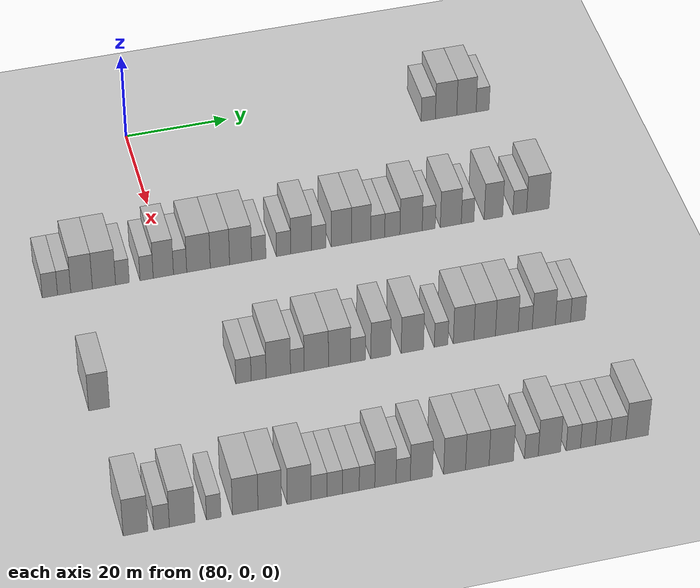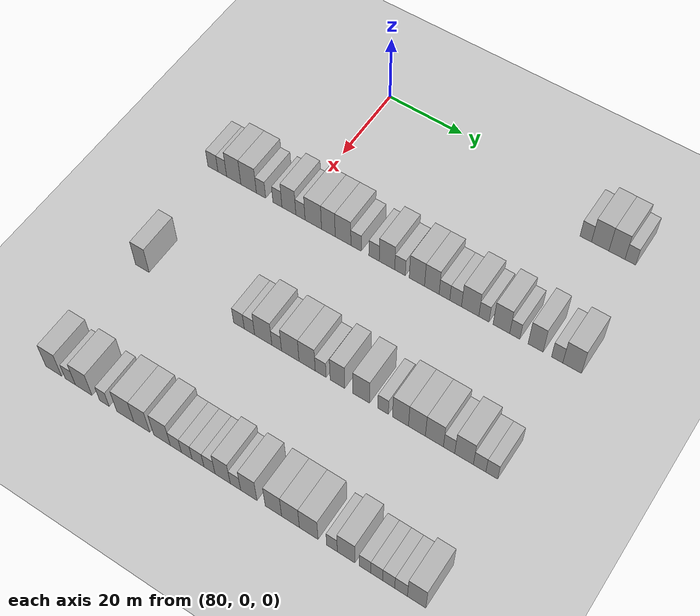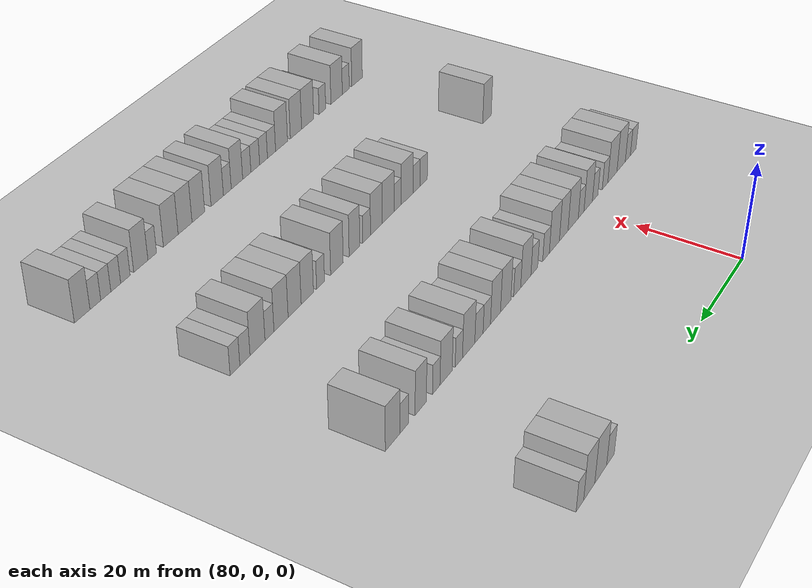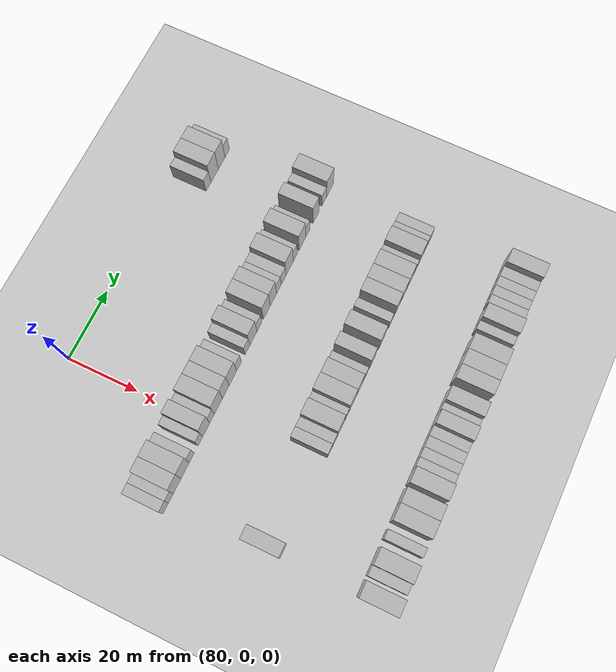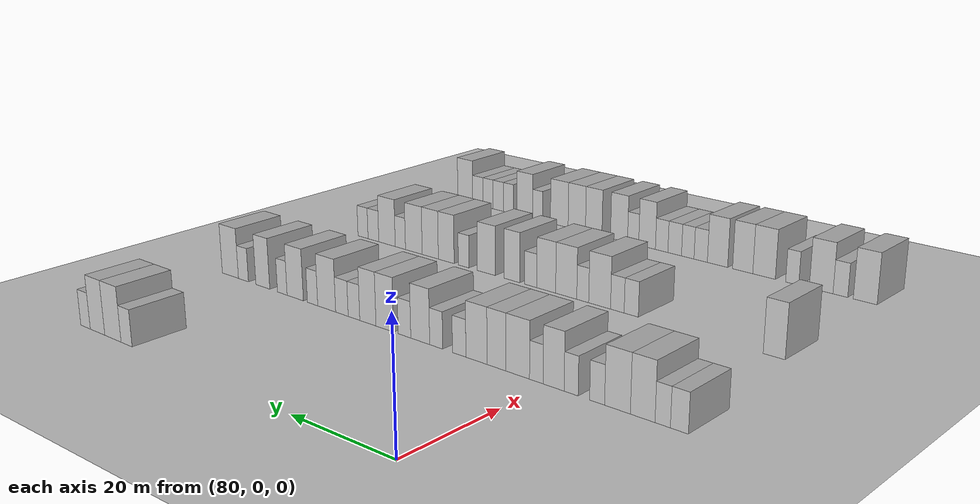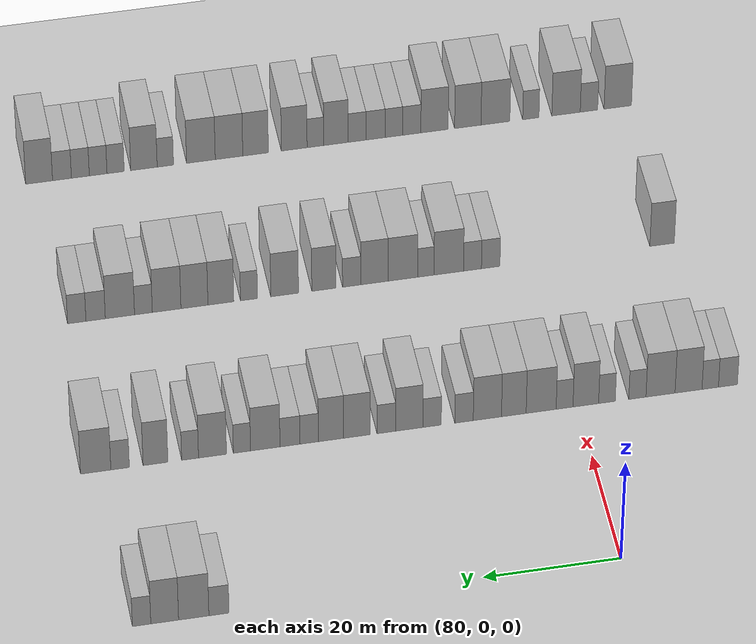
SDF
<sdf version="1.6">
 <world name="default">
  <include>
   <name>ground_plane_2</name>
   <uri>model://HANNAS_ground_plane</uri>
   <pose>100 0 0  0 0 0</pose>
  </include>
  <model name="building_579">
   <static>1</static>
   <pose>85.0000 57.8778 0 0.000000 0.000000 0.000000</pose>
   <link name="link">
    <pose>0 0 3.00 0 0 0</pose>
    <collision name="collision"><geometry><box><size>10.0000 2.8677 6.0000</size></box></geometry></collision>
    <visual name="visual">
     <cast_shadows>0</cast_shadows>
     <geometry><box><size>10.0000 2.8677 6.0000</size></box></geometry>
     <material>
      <script>
       <uri>model://HANNAS_wall/materials/scripts</uri>
       <uri>model://HANNAS_wall/materials/textures</uri>
       <name>vrc/HANNAS_wall</name>
      </script>
     </material>
    </visual>
   </link>
  </model>
  <model name="building_580">
   <static>1</static>
   <pose>85.0000 61.4691 0 0.000000 0.000000 0.000000</pose>
   <link name="link">
    <pose>0 0 4.50 0 0 0</pose>
    <collision name="collision"><geometry><box><size>10.0000 4.3151 9.0000</size></box></geometry></collision>
    <visual name="visual">
     <cast_shadows>0</cast_shadows>
     <geometry><box><size>10.0000 4.3151 9.0000</size></box></geometry>
     <material>
      <script>
       <uri>model://HANNAS_wall/materials/scripts</uri>
       <uri>model://HANNAS_wall/materials/textures</uri>
       <name>vrc/HANNAS_wall</name>
      </script>
     </material>
    </visual>
   </link>
  </model>
  <model name="building_581">
   <static>1</static>
   <pose>85.0000 65.6026 0 0.000000 0.000000 0.000000</pose>
   <link name="link">
    <pose>0 0 4.50 0 0 0</pose>
    <collision name="collision"><geometry><box><size>10.0000 3.9518 9.0000</size></box></geometry></collision>
    <visual name="visual">
     <cast_shadows>0</cast_shadows>
     <geometry><box><size>10.0000 3.9518 9.0000</size></box></geometry>
     <material>
      <script>
       <uri>model://HANNAS_wall/materials/scripts</uri>
       <uri>model://HANNAS_wall/materials/textures</uri>
       <name>vrc/HANNAS_wall</name>
      </script>
     </material>
    </visual>
   </link>
  </model>
  <model name="building_582">
   <static>1</static>
   <pose>85.0000 68.8892 0 0.000000 0.000000 0.000000</pose>
   <link name="link">
    <pose>0 0 3.00 0 0 0</pose>
    <collision name="collision"><geometry><box><size>10.0000 2.6215 6.0000</size></box></geometry></collision>
    <visual name="visual">
     <cast_shadows>0</cast_shadows>
     <geometry><box><size>10.0000 2.6215 6.0000</size></box></geometry>
     <material>
      <script>
       <uri>model://HANNAS_wall/materials/scripts</uri>
       <uri>model://HANNAS_wall/materials/textures</uri>
       <name>vrc/HANNAS_wall</name>
      </script>
     </material>
    </visual>
   </link>
  </model>
  <model name="building_795">
   <static>1</static>
   <pose>115.0000 -22.3687 0 0.000000 0.000000 0.000000</pose>
   <link name="link">
    <pose>0 0 3.00 0 0 0</pose>
    <collision name="collision"><geometry><box><size>10.0000 2.8315 6.0000</size></box></geometry></collision>
    <visual name="visual">
     <cast_shadows>0</cast_shadows>
     <geometry><box><size>10.0000 2.8315 6.0000</size></box></geometry>
     <material>
      <script>
       <uri>model://HANNAS_wall/materials/scripts</uri>
       <uri>model://HANNAS_wall/materials/textures</uri>
       <name>vrc/HANNAS_wall</name>
      </script>
     </material>
    </visual>
   </link>
  </model>
  <model name="building_796">
   <static>1</static>
   <pose>115.0000 -19.7249 0 0.000000 0.000000 0.000000</pose>
   <link name="link">
    <pose>0 0 3.00 0 0 0</pose>
    <collision name="collision"><geometry><box><size>10.0000 2.4561 6.0000</size></box></geometry></collision>
    <visual name="visual">
     <cast_shadows>0</cast_shadows>
     <geometry><box><size>10.0000 2.4561 6.0000</size></box></geometry>
     <material>
      <script>
       <uri>model://HANNAS_wall/materials/scripts</uri>
       <uri>model://HANNAS_wall/materials/textures</uri>
       <name>vrc/HANNAS_wall</name>
      </script>
     </material>
    </visual>
   </link>
  </model>
  <model name="building_797">
   <static>1</static>
   <pose>115.0000 -16.4858 0 0.000000 0.000000 0.000000</pose>
   <link name="link">
    <pose>0 0 4.50 0 0 0</pose>
    <collision name="collision"><geometry><box><size>10.0000 4.0220 9.0000</size></box></geometry></collision>
    <visual name="visual">
     <cast_shadows>0</cast_shadows>
     <geometry><box><size>10.0000 4.0220 9.0000</size></box></geometry>
     <material>
      <script>
       <uri>model://HANNAS_wall/materials/scripts</uri>
       <uri>model://HANNAS_wall/materials/textures</uri>
       <name>vrc/HANNAS_wall</name>
      </script>
     </material>
    </visual>
   </link>
  </model>
  <model name="building_798">
   <static>1</static>
   <pose>115.0000 -12.3118 0 0.000000 0.000000 0.000000</pose>
   <link name="link">
    <pose>0 0 4.50 0 0 0</pose>
    <collision name="collision"><geometry><box><size>10.0000 4.3262 9.0000</size></box></geometry></collision>
    <visual name="visual">
     <cast_shadows>0</cast_shadows>
     <geometry><box><size>10.0000 4.3262 9.0000</size></box></geometry>
     <material>
      <script>
       <uri>model://HANNAS_wall/materials/scripts</uri>
       <uri>model://HANNAS_wall/materials/textures</uri>
       <name>vrc/HANNAS_wall</name>
      </script>
     </material>
    </visual>
   </link>
  </model>
  <model name="building_799">
   <static>1</static>
   <pose>115.0000 -8.8650 0 0.000000 0.000000 0.000000</pose>
   <link name="link">
    <pose>0 0 3.00 0 0 0</pose>
    <collision name="collision"><geometry><box><size>10.0000 2.5674 6.0000</size></box></geometry></collision>
    <visual name="visual">
     <cast_shadows>0</cast_shadows>
     <geometry><box><size>10.0000 2.5674 6.0000</size></box></geometry>
     <material>
      <script>
       <uri>model://HANNAS_wall/materials/scripts</uri>
       <uri>model://HANNAS_wall/materials/textures</uri>
       <name>vrc/HANNAS_wall</name>
      </script>
     </material>
    </visual>
   </link>
  </model>
  <model name="building_800">
   <static>1</static>
   <pose>115.0000 -4.3397 0 0.000000 0.000000 0.000000</pose>
   <link name="link">
    <pose>0 0 3.00 0 0 0</pose>
    <collision name="collision"><geometry><box><size>10.0000 2.4831 6.0000</size></box></geometry></collision>
    <visual name="visual">
     <cast_shadows>0</cast_shadows>
     <geometry><box><size>10.0000 2.4831 6.0000</size></box></geometry>
     <material>
      <script>
       <uri>model://HANNAS_wall/materials/scripts</uri>
       <uri>model://HANNAS_wall/materials/textures</uri>
       <name>vrc/HANNAS_wall</name>
      </script>
     </material>
    </visual>
   </link>
  </model>
  <model name="building_801">
   <static>1</static>
   <pose>115.0000 -1.1976 0 0.000000 0.000000 0.000000</pose>
   <link name="link">
    <pose>0 0 4.50 0 0 0</pose>
    <collision name="collision"><geometry><box><size>10.0000 3.8011 9.0000</size></box></geometry></collision>
    <visual name="visual">
     <cast_shadows>0</cast_shadows>
     <geometry><box><size>10.0000 3.8011 9.0000</size></box></geometry>
     <material>
      <script>
       <uri>model://HANNAS_wall/materials/scripts</uri>
       <uri>model://HANNAS_wall/materials/textures</uri>
       <name>vrc/HANNAS_wall</name>
      </script>
     </material>
    </visual>
   </link>
  </model>
  <model name="building_802">
   <static>1</static>
   <pose>115.0000 1.9521 0 0.000000 0.000000 0.000000</pose>
   <link name="link">
    <pose>0 0 3.00 0 0 0</pose>
    <collision name="collision"><geometry><box><size>10.0000 2.4983 6.0000</size></box></geometry></collision>
    <visual name="visual">
     <cast_shadows>0</cast_shadows>
     <geometry><box><size>10.0000 2.4983 6.0000</size></box></geometry>
     <material>
      <script>
       <uri>model://HANNAS_wall/materials/scripts</uri>
       <uri>model://HANNAS_wall/materials/textures</uri>
       <name>vrc/HANNAS_wall</name>
      </script>
     </material>
    </visual>
   </link>
  </model>
  <model name="building_803">
   <static>1</static>
   <pose>115.0000 5.4259 0 0.000000 0.000000 0.000000</pose>
   <link name="link">
    <pose>0 0 4.50 0 0 0</pose>
    <collision name="collision"><geometry><box><size>10.0000 4.4494 9.0000</size></box></geometry></collision>
    <visual name="visual">
     <cast_shadows>0</cast_shadows>
     <geometry><box><size>10.0000 4.4494 9.0000</size></box></geometry>
     <material>
      <script>
       <uri>model://HANNAS_wall/materials/scripts</uri>
       <uri>model://HANNAS_wall/materials/textures</uri>
       <name>vrc/HANNAS_wall</name>
      </script>
     </material>
    </visual>
   </link>
  </model>
  <model name="building_804">
   <static>1</static>
   <pose>115.0000 9.4767 0 0.000000 0.000000 0.000000</pose>
   <link name="link">
    <pose>0 0 4.50 0 0 0</pose>
    <collision name="collision"><geometry><box><size>10.0000 3.6522 9.0000</size></box></geometry></collision>
    <visual name="visual">
     <cast_shadows>0</cast_shadows>
     <geometry><box><size>10.0000 3.6522 9.0000</size></box></geometry>
     <material>
      <script>
       <uri>model://HANNAS_wall/materials/scripts</uri>
       <uri>model://HANNAS_wall/materials/textures</uri>
       <name>vrc/HANNAS_wall</name>
      </script>
     </material>
    </visual>
   </link>
  </model>
  <model name="building_805">
   <static>1</static>
   <pose>115.0000 13.3908 0 0.000000 0.000000 0.000000</pose>
   <link name="link">
    <pose>0 0 4.50 0 0 0</pose>
    <collision name="collision"><geometry><box><size>10.0000 4.1760 9.0000</size></box></geometry></collision>
    <visual name="visual">
     <cast_shadows>0</cast_shadows>
     <geometry><box><size>10.0000 4.1760 9.0000</size></box></geometry>
     <material>
      <script>
       <uri>model://HANNAS_wall/materials/scripts</uri>
       <uri>model://HANNAS_wall/materials/textures</uri>
       <name>vrc/HANNAS_wall</name>
      </script>
     </material>
    </visual>
   </link>
  </model>
  <model name="building_806">
   <static>1</static>
   <pose>115.0000 16.8415 0 0.000000 0.000000 0.000000</pose>
   <link name="link">
    <pose>0 0 3.00 0 0 0</pose>
    <collision name="collision"><geometry><box><size>10.0000 2.7253 6.0000</size></box></geometry></collision>
    <visual name="visual">
     <cast_shadows>0</cast_shadows>
     <geometry><box><size>10.0000 2.7253 6.0000</size></box></geometry>
     <material>
      <script>
       <uri>model://HANNAS_wall/materials/scripts</uri>
       <uri>model://HANNAS_wall/materials/textures</uri>
       <name>vrc/HANNAS_wall</name>
      </script>
     </material>
    </visual>
   </link>
  </model>
  <model name="building_807">
   <static>1</static>
   <pose>115.0000 21.5611 0 0.000000 0.000000 0.000000</pose>
   <link name="link">
    <pose>0 0 3.00 0 0 0</pose>
    <collision name="collision"><geometry><box><size>10.0000 2.7140 6.0000</size></box></geometry></collision>
    <visual name="visual">
     <cast_shadows>0</cast_shadows>
     <geometry><box><size>10.0000 2.7140 6.0000</size></box></geometry>
     <material>
      <script>
       <uri>model://HANNAS_wall/materials/scripts</uri>
       <uri>model://HANNAS_wall/materials/textures</uri>
       <name>vrc/HANNAS_wall</name>
      </script>
     </material>
    </visual>
   </link>
  </model>
  <model name="building_808">
   <static>1</static>
   <pose>115.0000 24.9270 0 0.000000 0.000000 0.000000</pose>
   <link name="link">
    <pose>0 0 4.50 0 0 0</pose>
    <collision name="collision"><geometry><box><size>10.0000 4.0179 9.0000</size></box></geometry></collision>
    <visual name="visual">
     <cast_shadows>0</cast_shadows>
     <geometry><box><size>10.0000 4.0179 9.0000</size></box></geometry>
     <material>
      <script>
       <uri>model://HANNAS_wall/materials/scripts</uri>
       <uri>model://HANNAS_wall/materials/textures</uri>
       <name>vrc/HANNAS_wall</name>
      </script>
     </material>
    </visual>
   </link>
  </model>
  <model name="building_809">
   <static>1</static>
   <pose>115.0000 28.3049 0 0.000000 0.000000 0.000000</pose>
   <link name="link">
    <pose>0 0 3.00 0 0 0</pose>
    <collision name="collision"><geometry><box><size>10.0000 2.7380 6.0000</size></box></geometry></collision>
    <visual name="visual">
     <cast_shadows>0</cast_shadows>
     <geometry><box><size>10.0000 2.7380 6.0000</size></box></geometry>
     <material>
      <script>
       <uri>model://HANNAS_wall/materials/scripts</uri>
       <uri>model://HANNAS_wall/materials/textures</uri>
       <name>vrc/HANNAS_wall</name>
      </script>
     </material>
    </visual>
   </link>
  </model>
  <model name="building_810">
   <static>1</static>
   <pose>115.0000 32.6317 0 0.000000 0.000000 0.000000</pose>
   <link name="link">
    <pose>0 0 4.50 0 0 0</pose>
    <collision name="collision"><geometry><box><size>10.0000 3.9155 9.0000</size></box></geometry></collision>
    <visual name="visual">
     <cast_shadows>0</cast_shadows>
     <geometry><box><size>10.0000 3.9155 9.0000</size></box></geometry>
     <material>
      <script>
       <uri>model://HANNAS_wall/materials/scripts</uri>
       <uri>model://HANNAS_wall/materials/textures</uri>
       <name>vrc/HANNAS_wall</name>
      </script>
     </material>
    </visual>
   </link>
  </model>
  <model name="building_811">
   <static>1</static>
   <pose>115.0000 36.4364 0 0.000000 0.000000 0.000000</pose>
   <link name="link">
    <pose>0 0 4.50 0 0 0</pose>
    <collision name="collision"><geometry><box><size>10.0000 3.6940 9.0000</size></box></geometry></collision>
    <visual name="visual">
     <cast_shadows>0</cast_shadows>
     <geometry><box><size>10.0000 3.6940 9.0000</size></box></geometry>
     <material>
      <script>
       <uri>model://HANNAS_wall/materials/scripts</uri>
       <uri>model://HANNAS_wall/materials/textures</uri>
       <name>vrc/HANNAS_wall</name>
      </script>
     </material>
    </visual>
   </link>
  </model>
  <model name="building_812">
   <static>1</static>
   <pose>115.0000 39.6289 0 0.000000 0.000000 0.000000</pose>
   <link name="link">
    <pose>0 0 3.00 0 0 0</pose>
    <collision name="collision"><geometry><box><size>10.0000 2.6909 6.0000</size></box></geometry></collision>
    <visual name="visual">
     <cast_shadows>0</cast_shadows>
     <geometry><box><size>10.0000 2.6909 6.0000</size></box></geometry>
     <material>
      <script>
       <uri>model://HANNAS_wall/materials/scripts</uri>
       <uri>model://HANNAS_wall/materials/textures</uri>
       <name>vrc/HANNAS_wall</name>
      </script>
     </material>
    </visual>
   </link>
  </model>
  <model name="building_813">
   <static>1</static>
   <pose>115.0000 42.4456 0 0.000000 0.000000 0.000000</pose>
   <link name="link">
    <pose>0 0 3.00 0 0 0</pose>
    <collision name="collision"><geometry><box><size>10.0000 2.9425 6.0000</size></box></geometry></collision>
    <visual name="visual">
     <cast_shadows>0</cast_shadows>
     <geometry><box><size>10.0000 2.9425 6.0000</size></box></geometry>
     <material>
      <script>
       <uri>model://HANNAS_wall/materials/scripts</uri>
       <uri>model://HANNAS_wall/materials/textures</uri>
       <name>vrc/HANNAS_wall</name>
      </script>
     </material>
    </visual>
   </link>
  </model>
  <model name="building_814">
   <static>1</static>
   <pose>115.0000 46.0729 0 0.000000 0.000000 0.000000</pose>
   <link name="link">
    <pose>0 0 4.50 0 0 0</pose>
    <collision name="collision"><geometry><box><size>10.0000 4.3121 9.0000</size></box></geometry></collision>
    <visual name="visual">
     <cast_shadows>0</cast_shadows>
     <geometry><box><size>10.0000 4.3121 9.0000</size></box></geometry>
     <material>
      <script>
       <uri>model://HANNAS_wall/materials/scripts</uri>
       <uri>model://HANNAS_wall/materials/textures</uri>
       <name>vrc/HANNAS_wall</name>
      </script>
     </material>
    </visual>
   </link>
  </model>
  <model name="building_815">
   <static>1</static>
   <pose>115.0000 49.4881 0 0.000000 0.000000 0.000000</pose>
   <link name="link">
    <pose>0 0 3.00 0 0 0</pose>
    <collision name="collision"><geometry><box><size>10.0000 2.5183 6.0000</size></box></geometry></collision>
    <visual name="visual">
     <cast_shadows>0</cast_shadows>
     <geometry><box><size>10.0000 2.5183 6.0000</size></box></geometry>
     <material>
      <script>
       <uri>model://HANNAS_wall/materials/scripts</uri>
       <uri>model://HANNAS_wall/materials/textures</uri>
       <name>vrc/HANNAS_wall</name>
      </script>
     </material>
    </visual>
   </link>
  </model>
  <model name="building_816">
   <static>1</static>
   <pose>115.0000 53.7925 0 0.000000 0.000000 0.000000</pose>
   <link name="link">
    <pose>0 0 4.50 0 0 0</pose>
    <collision name="collision"><geometry><box><size>10.0000 4.0904 9.0000</size></box></geometry></collision>
    <visual name="visual">
     <cast_shadows>0</cast_shadows>
     <geometry><box><size>10.0000 4.0904 9.0000</size></box></geometry>
     <material>
      <script>
       <uri>model://HANNAS_wall/materials/scripts</uri>
       <uri>model://HANNAS_wall/materials/textures</uri>
       <name>vrc/HANNAS_wall</name>
      </script>
     </material>
    </visual>
   </link>
  </model>
  <model name="building_817">
   <static>1</static>
   <pose>115.0000 57.0676 0 0.000000 0.000000 0.000000</pose>
   <link name="link">
    <pose>0 0 3.00 0 0 0</pose>
    <collision name="collision"><geometry><box><size>10.0000 2.4599 6.0000</size></box></geometry></collision>
    <visual name="visual">
     <cast_shadows>0</cast_shadows>
     <geometry><box><size>10.0000 2.4599 6.0000</size></box></geometry>
     <material>
      <script>
       <uri>model://HANNAS_wall/materials/scripts</uri>
       <uri>model://HANNAS_wall/materials/textures</uri>
       <name>vrc/HANNAS_wall</name>
      </script>
     </material>
    </visual>
   </link>
  </model>
  <model name="building_818">
   <static>1</static>
   <pose>115.0000 62.1087 0 0.000000 0.000000 0.000000</pose>
   <link name="link">
    <pose>0 0 4.50 0 0 0</pose>
    <collision name="collision"><geometry><box><size>10.0000 3.6224 9.0000</size></box></geometry></collision>
    <visual name="visual">
     <cast_shadows>0</cast_shadows>
     <geometry><box><size>10.0000 3.6224 9.0000</size></box></geometry>
     <material>
      <script>
       <uri>model://HANNAS_wall/materials/scripts</uri>
       <uri>model://HANNAS_wall/materials/textures</uri>
       <name>vrc/HANNAS_wall</name>
      </script>
     </material>
    </visual>
   </link>
  </model>
  <model name="building_819">
   <static>1</static>
   <pose>115.0000 67.2672 0 0.000000 0.000000 0.000000</pose>
   <link name="link">
    <pose>0 0 3.00 0 0 0</pose>
    <collision name="collision"><geometry><box><size>10.0000 2.6947 6.0000</size></box></geometry></collision>
    <visual name="visual">
     <cast_shadows>0</cast_shadows>
     <geometry><box><size>10.0000 2.6947 6.0000</size></box></geometry>
     <material>
      <script>
       <uri>model://HANNAS_wall/materials/scripts</uri>
       <uri>model://HANNAS_wall/materials/textures</uri>
       <name>vrc/HANNAS_wall</name>
      </script>
     </material>
    </visual>
   </link>
  </model>
  <model name="building_820">
   <static>1</static>
   <pose>115.0000 70.8242 0 0.000000 0.000000 0.000000</pose>
   <link name="link">
    <pose>0 0 4.50 0 0 0</pose>
    <collision name="collision"><geometry><box><size>10.0000 4.4193 9.0000</size></box></geometry></collision>
    <visual name="visual">
     <cast_shadows>0</cast_shadows>
     <geometry><box><size>10.0000 4.4193 9.0000</size></box></geometry>
     <material>
      <script>
       <uri>model://HANNAS_wall/materials/scripts</uri>
       <uri>model://HANNAS_wall/materials/textures</uri>
       <name>vrc/HANNAS_wall</name>
      </script>
     </material>
    </visual>
   </link>
  </model>
  <model name="building_1027">
   <static>1</static>
   <pose>145.0000 -19.1681 0 0.000000 0.000000 0.000000</pose>
   <link name="link">
    <pose>0 0 4.50 0 0 0</pose>
    <collision name="collision"><geometry><box><size>10.0000 3.7262 9.0000</size></box></geometry></collision>
    <visual name="visual">
     <cast_shadows>0</cast_shadows>
     <geometry><box><size>10.0000 3.7262 9.0000</size></box></geometry>
     <material>
      <script>
       <uri>model://HANNAS_wall/materials/scripts</uri>
       <uri>model://HANNAS_wall/materials/textures</uri>
       <name>vrc/HANNAS_wall</name>
      </script>
     </material>
    </visual>
   </link>
  </model>
  <model name="building_1028">
   <static>1</static>
   <pose>145.0000 6.8922 0 0.000000 0.000000 0.000000</pose>
   <link name="link">
    <pose>0 0 3.00 0 0 0</pose>
    <collision name="collision"><geometry><box><size>10.0000 2.7982 6.0000</size></box></geometry></collision>
    <visual name="visual">
     <cast_shadows>0</cast_shadows>
     <geometry><box><size>10.0000 2.7982 6.0000</size></box></geometry>
     <material>
      <script>
       <uri>model://HANNAS_wall/materials/scripts</uri>
       <uri>model://HANNAS_wall/materials/textures</uri>
       <name>vrc/HANNAS_wall</name>
      </script>
     </material>
    </visual>
   </link>
  </model>
  <model name="building_1029">
   <static>1</static>
   <pose>145.0000 9.6502 0 0.000000 0.000000 0.000000</pose>
   <link name="link">
    <pose>0 0 3.00 0 0 0</pose>
    <collision name="collision"><geometry><box><size>10.0000 2.7179 6.0000</size></box></geometry></collision>
    <visual name="visual">
     <cast_shadows>0</cast_shadows>
     <geometry><box><size>10.0000 2.7179 6.0000</size></box></geometry>
     <material>
      <script>
       <uri>model://HANNAS_wall/materials/scripts</uri>
       <uri>model://HANNAS_wall/materials/textures</uri>
       <name>vrc/HANNAS_wall</name>
      </script>
     </material>
    </visual>
   </link>
  </model>
  <model name="building_1030">
   <static>1</static>
   <pose>145.0000 13.2420 0 0.000000 0.000000 0.000000</pose>
   <link name="link">
    <pose>0 0 4.50 0 0 0</pose>
    <collision name="collision"><geometry><box><size>10.0000 4.4655 9.0000</size></box></geometry></collision>
    <visual name="visual">
     <cast_shadows>0</cast_shadows>
     <geometry><box><size>10.0000 4.4655 9.0000</size></box></geometry>
     <material>
      <script>
       <uri>model://HANNAS_wall/materials/scripts</uri>
       <uri>model://HANNAS_wall/materials/textures</uri>
       <name>vrc/HANNAS_wall</name>
      </script>
     </material>
    </visual>
   </link>
  </model>
  <model name="building_1031">
   <static>1</static>
   <pose>145.0000 16.7136 0 0.000000 0.000000 0.000000</pose>
   <link name="link">
    <pose>0 0 3.00 0 0 0</pose>
    <collision name="collision"><geometry><box><size>10.0000 2.4777 6.0000</size></box></geometry></collision>
    <visual name="visual">
     <cast_shadows>0</cast_shadows>
     <geometry><box><size>10.0000 2.4777 6.0000</size></box></geometry>
     <material>
      <script>
       <uri>model://HANNAS_wall/materials/scripts</uri>
       <uri>model://HANNAS_wall/materials/textures</uri>
       <name>vrc/HANNAS_wall</name>
      </script>
     </material>
    </visual>
   </link>
  </model>
  <model name="building_1032">
   <static>1</static>
   <pose>145.0000 20.1913 0 0.000000 0.000000 0.000000</pose>
   <link name="link">
    <pose>0 0 4.50 0 0 0</pose>
    <collision name="collision"><geometry><box><size>10.0000 4.4779 9.0000</size></box></geometry></collision>
    <visual name="visual">
     <cast_shadows>0</cast_shadows>
     <geometry><box><size>10.0000 4.4779 9.0000</size></box></geometry>
     <material>
      <script>
       <uri>model://HANNAS_wall/materials/scripts</uri>
       <uri>model://HANNAS_wall/materials/textures</uri>
       <name>vrc/HANNAS_wall</name>
      </script>
     </material>
    </visual>
   </link>
  </model>
  <model name="building_1033">
   <static>1</static>
   <pose>145.0000 24.4792 0 0.000000 0.000000 0.000000</pose>
   <link name="link">
    <pose>0 0 4.50 0 0 0</pose>
    <collision name="collision"><geometry><box><size>10.0000 4.0978 9.0000</size></box></geometry></collision>
    <visual name="visual">
     <cast_shadows>0</cast_shadows>
     <geometry><box><size>10.0000 4.0978 9.0000</size></box></geometry>
     <material>
      <script>
       <uri>model://HANNAS_wall/materials/scripts</uri>
       <uri>model://HANNAS_wall/materials/textures</uri>
       <name>vrc/HANNAS_wall</name>
      </script>
     </material>
    </visual>
   </link>
  </model>
  <model name="building_1034">
   <static>1</static>
   <pose>145.0000 27.8962 0 0.000000 0.000000 0.000000</pose>
   <link name="link">
    <pose>0 0 3.00 0 0 0</pose>
    <collision name="collision"><geometry><box><size>10.0000 2.7362 6.0000</size></box></geometry></collision>
    <visual name="visual">
     <cast_shadows>0</cast_shadows>
     <geometry><box><size>10.0000 2.7362 6.0000</size></box></geometry>
     <material>
      <script>
       <uri>model://HANNAS_wall/materials/scripts</uri>
       <uri>model://HANNAS_wall/materials/textures</uri>
       <name>vrc/HANNAS_wall</name>
      </script>
     </material>
    </visual>
   </link>
  </model>
  <model name="building_1035">
   <static>1</static>
   <pose>145.0000 32.0779 0 0.000000 0.000000 0.000000</pose>
   <link name="link">
    <pose>0 0 4.50 0 0 0</pose>
    <collision name="collision"><geometry><box><size>10.0000 3.6272 9.0000</size></box></geometry></collision>
    <visual name="visual">
     <cast_shadows>0</cast_shadows>
     <geometry><box><size>10.0000 3.6272 9.0000</size></box></geometry>
     <material>
      <script>
       <uri>model://HANNAS_wall/materials/scripts</uri>
       <uri>model://HANNAS_wall/materials/textures</uri>
       <name>vrc/HANNAS_wall</name>
      </script>
     </material>
    </visual>
   </link>
  </model>
  <model name="building_1036">
   <static>1</static>
   <pose>145.0000 37.9705 0 0.000000 0.000000 0.000000</pose>
   <link name="link">
    <pose>0 0 4.50 0 0 0</pose>
    <collision name="collision"><geometry><box><size>10.0000 4.1581 9.0000</size></box></geometry></collision>
    <visual name="visual">
     <cast_shadows>0</cast_shadows>
     <geometry><box><size>10.0000 4.1581 9.0000</size></box></geometry>
     <material>
      <script>
       <uri>model://HANNAS_wall/materials/scripts</uri>
       <uri>model://HANNAS_wall/materials/textures</uri>
       <name>vrc/HANNAS_wall</name>
      </script>
     </material>
    </visual>
   </link>
  </model>
  <model name="building_1037">
   <static>1</static>
   <pose>145.0000 43.3267 0 0.000000 0.000000 0.000000</pose>
   <link name="link">
    <pose>0 0 3.00 0 0 0</pose>
    <collision name="collision"><geometry><box><size>10.0000 2.5543 6.0000</size></box></geometry></collision>
    <visual name="visual">
     <cast_shadows>0</cast_shadows>
     <geometry><box><size>10.0000 2.5543 6.0000</size></box></geometry>
     <material>
      <script>
       <uri>model://HANNAS_wall/materials/scripts</uri>
       <uri>model://HANNAS_wall/materials/textures</uri>
       <name>vrc/HANNAS_wall</name>
      </script>
     </material>
    </visual>
   </link>
  </model>
  <model name="building_1038">
   <static>1</static>
   <pose>145.0000 47.5375 0 0.000000 0.000000 0.000000</pose>
   <link name="link">
    <pose>0 0 4.50 0 0 0</pose>
    <collision name="collision"><geometry><box><size>10.0000 3.8674 9.0000</size></box></geometry></collision>
    <visual name="visual">
     <cast_shadows>0</cast_shadows>
     <geometry><box><size>10.0000 3.8674 9.0000</size></box></geometry>
     <material>
      <script>
       <uri>model://HANNAS_wall/materials/scripts</uri>
       <uri>model://HANNAS_wall/materials/textures</uri>
       <name>vrc/HANNAS_wall</name>
      </script>
     </material>
    </visual>
   </link>
  </model>
  <model name="building_1039">
   <static>1</static>
   <pose>145.0000 51.4903 0 0.000000 0.000000 0.000000</pose>
   <link name="link">
    <pose>0 0 4.50 0 0 0</pose>
    <collision name="collision"><geometry><box><size>10.0000 4.0381 9.0000</size></box></geometry></collision>
    <visual name="visual">
     <cast_shadows>0</cast_shadows>
     <geometry><box><size>10.0000 4.0381 9.0000</size></box></geometry>
     <material>
      <script>
       <uri>model://HANNAS_wall/materials/scripts</uri>
       <uri>model://HANNAS_wall/materials/textures</uri>
       <name>vrc/HANNAS_wall</name>
      </script>
     </material>
    </visual>
   </link>
  </model>
  <model name="building_1040">
   <static>1</static>
   <pose>145.0000 55.6463 0 0.000000 0.000000 0.000000</pose>
   <link name="link">
    <pose>0 0 4.50 0 0 0</pose>
    <collision name="collision"><geometry><box><size>10.0000 4.2740 9.0000</size></box></geometry></collision>
    <visual name="visual">
     <cast_shadows>0</cast_shadows>
     <geometry><box><size>10.0000 4.2740 9.0000</size></box></geometry>
     <material>
      <script>
       <uri>model://HANNAS_wall/materials/scripts</uri>
       <uri>model://HANNAS_wall/materials/textures</uri>
       <name>vrc/HANNAS_wall</name>
      </script>
     </material>
    </visual>
   </link>
  </model>
  <model name="building_1041">
   <static>1</static>
   <pose>145.0000 59.1117 0 0.000000 0.000000 0.000000</pose>
   <link name="link">
    <pose>0 0 3.00 0 0 0</pose>
    <collision name="collision"><geometry><box><size>10.0000 2.6566 6.0000</size></box></geometry></collision>
    <visual name="visual">
     <cast_shadows>0</cast_shadows>
     <geometry><box><size>10.0000 2.6566 6.0000</size></box></geometry>
     <material>
      <script>
       <uri>model://HANNAS_wall/materials/scripts</uri>
       <uri>model://HANNAS_wall/materials/textures</uri>
       <name>vrc/HANNAS_wall</name>
      </script>
     </material>
    </visual>
   </link>
  </model>
  <model name="building_1042">
   <static>1</static>
   <pose>145.0000 62.6178 0 0.000000 0.000000 0.000000</pose>
   <link name="link">
    <pose>0 0 4.50 0 0 0</pose>
    <collision name="collision"><geometry><box><size>10.0000 4.3557 9.0000</size></box></geometry></collision>
    <visual name="visual">
     <cast_shadows>0</cast_shadows>
     <geometry><box><size>10.0000 4.3557 9.0000</size></box></geometry>
     <material>
      <script>
       <uri>model://HANNAS_wall/materials/scripts</uri>
       <uri>model://HANNAS_wall/materials/textures</uri>
       <name>vrc/HANNAS_wall</name>
      </script>
     </material>
    </visual>
   </link>
  </model>
  <model name="building_1043">
   <static>1</static>
   <pose>145.0000 66.2402 0 0.000000 0.000000 0.000000</pose>
   <link name="link">
    <pose>0 0 3.00 0 0 0</pose>
    <collision name="collision"><geometry><box><size>10.0000 2.8890 6.0000</size></box></geometry></collision>
    <visual name="visual">
     <cast_shadows>0</cast_shadows>
     <geometry><box><size>10.0000 2.8890 6.0000</size></box></geometry>
     <material>
      <script>
       <uri>model://HANNAS_wall/materials/scripts</uri>
       <uri>model://HANNAS_wall/materials/textures</uri>
       <name>vrc/HANNAS_wall</name>
      </script>
     </material>
    </visual>
   </link>
  </model>
  <model name="building_1044">
   <static>1</static>
   <pose>145.0000 69.0547 0 0.000000 0.000000 0.000000</pose>
   <link name="link">
    <pose>0 0 3.00 0 0 0</pose>
    <collision name="collision"><geometry><box><size>10.0000 2.7399 6.0000</size></box></geometry></collision>
    <visual name="visual">
     <cast_shadows>0</cast_shadows>
     <geometry><box><size>10.0000 2.7399 6.0000</size></box></geometry>
     <material>
      <script>
       <uri>model://HANNAS_wall/materials/scripts</uri>
       <uri>model://HANNAS_wall/materials/textures</uri>
       <name>vrc/HANNAS_wall</name>
      </script>
     </material>
    </visual>
   </link>
  </model>
  <model name="building_1245">
   <static>1</static>
   <pose>175.0000 -18.8756 0 0.000000 0.000000 0.000000</pose>
   <link name="link">
    <pose>0 0 4.50 0 0 0</pose>
    <collision name="collision"><geometry><box><size>10.0000 4.2673 9.0000</size></box></geometry></collision>
    <visual name="visual">
     <cast_shadows>0</cast_shadows>
     <geometry><box><size>10.0000 4.2673 9.0000</size></box></geometry>
     <material>
      <script>
       <uri>model://HANNAS_wall/materials/scripts</uri>
       <uri>model://HANNAS_wall/materials/textures</uri>
       <name>vrc/HANNAS_wall</name>
      </script>
     </material>
    </visual>
   </link>
  </model>
  <model name="building_1246">
   <static>1</static>
   <pose>175.0000 -14.3864 0 0.000000 0.000000 0.000000</pose>
   <link name="link">
    <pose>0 0 3.00 0 0 0</pose>
    <collision name="collision"><geometry><box><size>10.0000 2.7112 6.0000</size></box></geometry></collision>
    <visual name="visual">
     <cast_shadows>0</cast_shadows>
     <geometry><box><size>10.0000 2.7112 6.0000</size></box></geometry>
     <material>
      <script>
       <uri>model://HANNAS_wall/materials/scripts</uri>
       <uri>model://HANNAS_wall/materials/textures</uri>
       <name>vrc/HANNAS_wall</name>
      </script>
     </material>
    </visual>
   </link>
  </model>
  <model name="building_1247">
   <static>1</static>
   <pose>175.0000 -10.8173 0 0.000000 0.000000 0.000000</pose>
   <link name="link">
    <pose>0 0 4.50 0 0 0</pose>
    <collision name="collision"><geometry><box><size>10.0000 4.4269 9.0000</size></box></geometry></collision>
    <visual name="visual">
     <cast_shadows>0</cast_shadows>
     <geometry><box><size>10.0000 4.4269 9.0000</size></box></geometry>
     <material>
      <script>
       <uri>model://HANNAS_wall/materials/scripts</uri>
       <uri>model://HANNAS_wall/materials/textures</uri>
       <name>vrc/HANNAS_wall</name>
      </script>
     </material>
    </visual>
   </link>
  </model>
  <model name="building_1248">
   <static>1</static>
   <pose>175.0000 -5.3417 0 0.000000 0.000000 0.000000</pose>
   <link name="link">
    <pose>0 0 3.00 0 0 0</pose>
    <collision name="collision"><geometry><box><size>10.0000 2.5243 6.0000</size></box></geometry></collision>
    <visual name="visual">
     <cast_shadows>0</cast_shadows>
     <geometry><box><size>10.0000 2.5243 6.0000</size></box></geometry>
     <material>
      <script>
       <uri>model://HANNAS_wall/materials/scripts</uri>
       <uri>model://HANNAS_wall/materials/textures</uri>
       <name>vrc/HANNAS_wall</name>
      </script>
     </material>
    </visual>
   </link>
  </model>
  <model name="building_1249">
   <static>1</static>
   <pose>175.0000 0.1569 0 0.000000 0.000000 0.000000</pose>
   <link name="link">
    <pose>0 0 4.50 0 0 0</pose>
    <collision name="collision"><geometry><box><size>10.0000 4.4729 9.0000</size></box></geometry></collision>
    <visual name="visual">
     <cast_shadows>0</cast_shadows>
     <geometry><box><size>10.0000 4.4729 9.0000</size></box></geometry>
     <material>
      <script>
       <uri>model://HANNAS_wall/materials/scripts</uri>
       <uri>model://HANNAS_wall/materials/textures</uri>
       <name>vrc/HANNAS_wall</name>
      </script>
     </material>
    </visual>
   </link>
  </model>
  <model name="building_1250">
   <static>1</static>
   <pose>175.0000 4.4393 0 0.000000 0.000000 0.000000</pose>
   <link name="link">
    <pose>0 0 4.50 0 0 0</pose>
    <collision name="collision"><geometry><box><size>10.0000 4.0919 9.0000</size></box></geometry></collision>
    <visual name="visual">
     <cast_shadows>0</cast_shadows>
     <geometry><box><size>10.0000 4.0919 9.0000</size></box></geometry>
     <material>
      <script>
       <uri>model://HANNAS_wall/materials/scripts</uri>
       <uri>model://HANNAS_wall/materials/textures</uri>
       <name>vrc/HANNAS_wall</name>
      </script>
     </material>
    </visual>
   </link>
  </model>
  <model name="building_1251">
   <static>1</static>
   <pose>175.0000 9.5965 0 0.000000 0.000000 0.000000</pose>
   <link name="link">
    <pose>0 0 4.50 0 0 0</pose>
    <collision name="collision"><geometry><box><size>10.0000 4.2225 9.0000</size></box></geometry></collision>
    <visual name="visual">
     <cast_shadows>0</cast_shadows>
     <geometry><box><size>10.0000 4.2225 9.0000</size></box></geometry>
     <material>
      <script>
       <uri>model://HANNAS_wall/materials/scripts</uri>
       <uri>model://HANNAS_wall/materials/textures</uri>
       <name>vrc/HANNAS_wall</name>
      </script>
     </material>
    </visual>
   </link>
  </model>
  <model name="building_1252">
   <static>1</static>
   <pose>175.0000 13.1233 0 0.000000 0.000000 0.000000</pose>
   <link name="link">
    <pose>0 0 3.00 0 0 0</pose>
    <collision name="collision"><geometry><box><size>10.0000 2.8312 6.0000</size></box></geometry></collision>
    <visual name="visual">
     <cast_shadows>0</cast_shadows>
     <geometry><box><size>10.0000 2.8312 6.0000</size></box></geometry>
     <material>
      <script>
       <uri>model://HANNAS_wall/materials/scripts</uri>
       <uri>model://HANNAS_wall/materials/textures</uri>
       <name>vrc/HANNAS_wall</name>
      </script>
     </material>
    </visual>
   </link>
  </model>
  <model name="building_1253">
   <static>1</static>
   <pose>175.0000 15.8827 0 0.000000 0.000000 0.000000</pose>
   <link name="link">
    <pose>0 0 3.00 0 0 0</pose>
    <collision name="collision"><geometry><box><size>10.0000 2.6875 6.0000</size></box></geometry></collision>
    <visual name="visual">
     <cast_shadows>0</cast_shadows>
     <geometry><box><size>10.0000 2.6875 6.0000</size></box></geometry>
     <material>
      <script>
       <uri>model://HANNAS_wall/materials/scripts</uri>
       <uri>model://HANNAS_wall/materials/textures</uri>
       <name>vrc/HANNAS_wall</name>
      </script>
     </material>
    </visual>
   </link>
  </model>
  <model name="building_1254">
   <static>1</static>
   <pose>175.0000 18.7091 0 0.000000 0.000000 0.000000</pose>
   <link name="link">
    <pose>0 0 3.00 0 0 0</pose>
    <collision name="collision"><geometry><box><size>10.0000 2.9654 6.0000</size></box></geometry></collision>
    <visual name="visual">
     <cast_shadows>0</cast_shadows>
     <geometry><box><size>10.0000 2.9654 6.0000</size></box></geometry>
     <material>
      <script>
       <uri>model://HANNAS_wall/materials/scripts</uri>
       <uri>model://HANNAS_wall/materials/textures</uri>
       <name>vrc/HANNAS_wall</name>
      </script>
     </material>
    </visual>
   </link>
  </model>
  <model name="building_1255">
   <static>1</static>
   <pose>175.0000 21.5706 0 0.000000 0.000000 0.000000</pose>
   <link name="link">
    <pose>0 0 3.00 0 0 0</pose>
    <collision name="collision"><geometry><box><size>10.0000 2.7576 6.0000</size></box></geometry></collision>
    <visual name="visual">
     <cast_shadows>0</cast_shadows>
     <geometry><box><size>10.0000 2.7576 6.0000</size></box></geometry>
     <material>
      <script>
       <uri>model://HANNAS_wall/materials/scripts</uri>
       <uri>model://HANNAS_wall/materials/textures</uri>
       <name>vrc/HANNAS_wall</name>
      </script>
     </material>
    </visual>
   </link>
  </model>
  <model name="building_1256">
   <static>1</static>
   <pose>175.0000 24.8300 0 0.000000 0.000000 0.000000</pose>
   <link name="link">
    <pose>0 0 4.50 0 0 0</pose>
    <collision name="collision"><geometry><box><size>10.0000 3.7613 9.0000</size></box></geometry></collision>
    <visual name="visual">
     <cast_shadows>0</cast_shadows>
     <geometry><box><size>10.0000 3.7613 9.0000</size></box></geometry>
     <material>
      <script>
       <uri>model://HANNAS_wall/materials/scripts</uri>
       <uri>model://HANNAS_wall/materials/textures</uri>
       <name>vrc/HANNAS_wall</name>
      </script>
     </material>
    </visual>
   </link>
  </model>
  <model name="building_1257">
   <static>1</static>
   <pose>175.0000 27.9838 0 0.000000 0.000000 0.000000</pose>
   <link name="link">
    <pose>0 0 3.00 0 0 0</pose>
    <collision name="collision"><geometry><box><size>10.0000 2.5462 6.0000</size></box></geometry></collision>
    <visual name="visual">
     <cast_shadows>0</cast_shadows>
     <geometry><box><size>10.0000 2.5462 6.0000</size></box></geometry>
     <material>
      <script>
       <uri>model://HANNAS_wall/materials/scripts</uri>
       <uri>model://HANNAS_wall/materials/textures</uri>
       <name>vrc/HANNAS_wall</name>
      </script>
     </material>
    </visual>
   </link>
  </model>
  <model name="building_1258">
   <static>1</static>
   <pose>175.0000 31.2342 0 0.000000 0.000000 0.000000</pose>
   <link name="link">
    <pose>0 0 4.50 0 0 0</pose>
    <collision name="collision"><geometry><box><size>10.0000 3.9548 9.0000</size></box></geometry></collision>
    <visual name="visual">
     <cast_shadows>0</cast_shadows>
     <geometry><box><size>10.0000 3.9548 9.0000</size></box></geometry>
     <material>
      <script>
       <uri>model://HANNAS_wall/materials/scripts</uri>
       <uri>model://HANNAS_wall/materials/textures</uri>
       <name>vrc/HANNAS_wall</name>
      </script>
     </material>
    </visual>
   </link>
  </model>
  <model name="building_1259">
   <static>1</static>
   <pose>175.0000 37.1755 0 0.000000 0.000000 0.000000</pose>
   <link name="link">
    <pose>0 0 4.50 0 0 0</pose>
    <collision name="collision"><geometry><box><size>10.0000 3.9278 9.0000</size></box></geometry></collision>
    <visual name="visual">
     <cast_shadows>0</cast_shadows>
     <geometry><box><size>10.0000 3.9278 9.0000</size></box></geometry>
     <material>
      <script>
       <uri>model://HANNAS_wall/materials/scripts</uri>
       <uri>model://HANNAS_wall/materials/textures</uri>
       <name>vrc/HANNAS_wall</name>
      </script>
     </material>
    </visual>
   </link>
  </model>
  <model name="building_1260">
   <static>1</static>
   <pose>175.0000 41.2509 0 0.000000 0.000000 0.000000</pose>
   <link name="link">
    <pose>0 0 4.50 0 0 0</pose>
    <collision name="collision"><geometry><box><size>10.0000 4.2229 9.0000</size></box></geometry></collision>
    <visual name="visual">
     <cast_shadows>0</cast_shadows>
     <geometry><box><size>10.0000 4.2229 9.0000</size></box></geometry>
     <material>
      <script>
       <uri>model://HANNAS_wall/materials/scripts</uri>
       <uri>model://HANNAS_wall/materials/textures</uri>
       <name>vrc/HANNAS_wall</name>
      </script>
     </material>
    </visual>
   </link>
  </model>
  <model name="building_1261">
   <static>1</static>
   <pose>175.0000 45.5597 0 0.000000 0.000000 0.000000</pose>
   <link name="link">
    <pose>0 0 4.50 0 0 0</pose>
    <collision name="collision"><geometry><box><size>10.0000 4.3948 9.0000</size></box></geometry></collision>
    <visual name="visual">
     <cast_shadows>0</cast_shadows>
     <geometry><box><size>10.0000 4.3948 9.0000</size></box></geometry>
     <material>
      <script>
       <uri>model://HANNAS_wall/materials/scripts</uri>
       <uri>model://HANNAS_wall/materials/textures</uri>
       <name>vrc/HANNAS_wall</name>
      </script>
     </material>
    </visual>
   </link>
  </model>
  <model name="building_1262">
   <static>1</static>
   <pose>175.0000 51.0048 0 0.000000 0.000000 0.000000</pose>
   <link name="link">
    <pose>0 0 3.00 0 0 0</pose>
    <collision name="collision"><geometry><box><size>10.0000 2.4952 6.0000</size></box></geometry></collision>
    <visual name="visual">
     <cast_shadows>0</cast_shadows>
     <geometry><box><size>10.0000 2.4952 6.0000</size></box></geometry>
     <material>
      <script>
       <uri>model://HANNAS_wall/materials/scripts</uri>
       <uri>model://HANNAS_wall/materials/textures</uri>
       <name>vrc/HANNAS_wall</name>
      </script>
     </material>
    </visual>
   </link>
  </model>
  <model name="building_1263">
   <static>1</static>
   <pose>175.0000 54.2739 0 0.000000 0.000000 0.000000</pose>
   <link name="link">
    <pose>0 0 4.50 0 0 0</pose>
    <collision name="collision"><geometry><box><size>10.0000 4.0431 9.0000</size></box></geometry></collision>
    <visual name="visual">
     <cast_shadows>0</cast_shadows>
     <geometry><box><size>10.0000 4.0431 9.0000</size></box></geometry>
     <material>
      <script>
       <uri>model://HANNAS_wall/materials/scripts</uri>
       <uri>model://HANNAS_wall/materials/textures</uri>
       <name>vrc/HANNAS_wall</name>
      </script>
     </material>
    </visual>
   </link>
  </model>
  <model name="building_1264">
   <static>1</static>
   <pose>175.0000 58.6081 0 0.000000 0.000000 0.000000</pose>
   <link name="link">
    <pose>0 0 3.00 0 0 0</pose>
    <collision name="collision"><geometry><box><size>10.0000 2.6252 6.0000</size></box></geometry></collision>
    <visual name="visual">
     <cast_shadows>0</cast_shadows>
     <geometry><box><size>10.0000 2.6252 6.0000</size></box></geometry>
     <material>
      <script>
       <uri>model://HANNAS_wall/materials/scripts</uri>
       <uri>model://HANNAS_wall/materials/textures</uri>
       <name>vrc/HANNAS_wall</name>
      </script>
     </material>
    </visual>
   </link>
  </model>
  <model name="building_1265">
   <static>1</static>
   <pose>175.0000 61.2708 0 0.000000 0.000000 0.000000</pose>
   <link name="link">
    <pose>0 0 3.00 0 0 0</pose>
    <collision name="collision"><geometry><box><size>10.0000 2.7004 6.0000</size></box></geometry></collision>
    <visual name="visual">
     <cast_shadows>0</cast_shadows>
     <geometry><box><size>10.0000 2.7004 6.0000</size></box></geometry>
     <material>
      <script>
       <uri>model://HANNAS_wall/materials/scripts</uri>
       <uri>model://HANNAS_wall/materials/textures</uri>
       <name>vrc/HANNAS_wall</name>
      </script>
     </material>
    </visual>
   </link>
  </model>
  <model name="building_1266">
   <static>1</static>
   <pose>175.0000 63.9835 0 0.000000 0.000000 0.000000</pose>
   <link name="link">
    <pose>0 0 3.00 0 0 0</pose>
    <collision name="collision"><geometry><box><size>10.0000 2.7249 6.0000</size></box></geometry></collision>
    <visual name="visual">
     <cast_shadows>0</cast_shadows>
     <geometry><box><size>10.0000 2.7249 6.0000</size></box></geometry>
     <material>
      <script>
       <uri>model://HANNAS_wall/materials/scripts</uri>
       <uri>model://HANNAS_wall/materials/textures</uri>
       <name>vrc/HANNAS_wall</name>
      </script>
     </material>
    </visual>
   </link>
  </model>
  <model name="building_1267">
   <static>1</static>
   <pose>175.0000 66.7825 0 0.000000 0.000000 0.000000</pose>
   <link name="link">
    <pose>0 0 3.00 0 0 0</pose>
    <collision name="collision"><geometry><box><size>10.0000 2.8732 6.0000</size></box></geometry></collision>
    <visual name="visual">
     <cast_shadows>0</cast_shadows>
     <geometry><box><size>10.0000 2.8732 6.0000</size></box></geometry>
     <material>
      <script>
       <uri>model://HANNAS_wall/materials/scripts</uri>
       <uri>model://HANNAS_wall/materials/textures</uri>
       <name>vrc/HANNAS_wall</name>
      </script>
     </material>
    </visual>
   </link>
  </model>
  <model name="building_1268">
   <static>1</static>
   <pose>175.0000 70.2636 0 0.000000 0.000000 0.000000</pose>
   <link name="link">
    <pose>0 0 4.50 0 0 0</pose>
    <collision name="collision"><geometry><box><size>10.0000 4.0890 9.0000</size></box></geometry></collision>
    <visual name="visual">
     <cast_shadows>0</cast_shadows>
     <geometry><box><size>10.0000 4.0890 9.0000</size></box></geometry>
     <material>
      <script>
       <uri>model://HANNAS_wall/materials/scripts</uri>
       <uri>model://HANNAS_wall/materials/textures</uri>
       <name>vrc/HANNAS_wall</name>
      </script>
     </material>
    </visual>
   </link>
  </model>
 </world>
</sdf>
